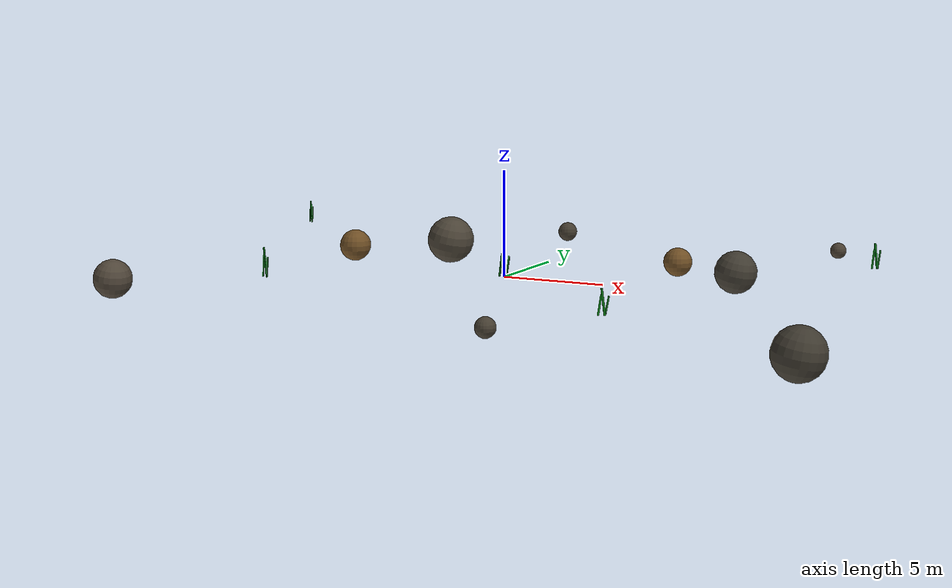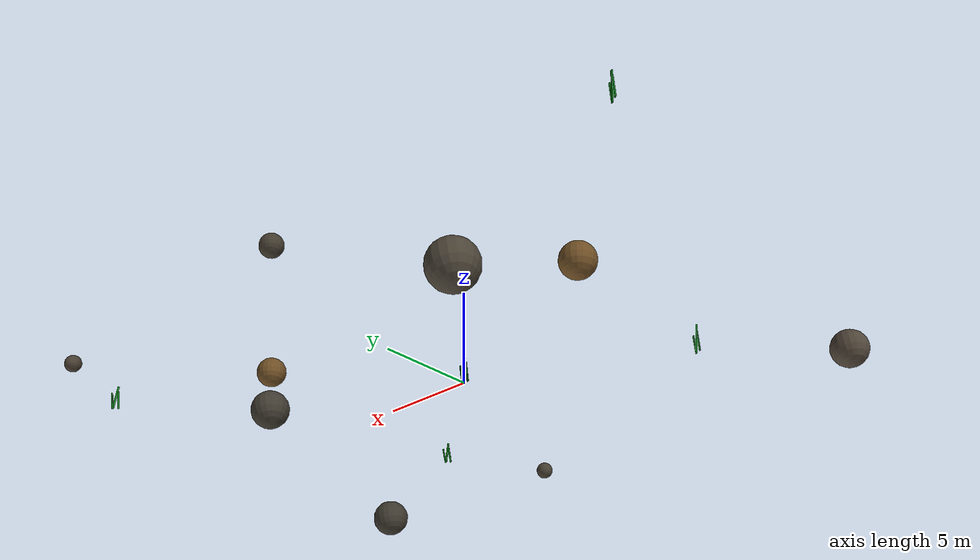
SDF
<?xml version="1.0"?>

<sdf version="1.7">

  <model name="underwater_decorations">

    <static>true</static>

    <!-- SEAWEED CLUSTER 1 -->

    <link name="seaweed_1">

      <visual name="blade_1">
        <pose>-0.18 0 0.55 0 0.12 0</pose>
        <geometry>
          <box>
            <size>0.08 0.05 1.1</size>
          </box>
        </geometry>
        <material>
          <ambient>0.02 0.22 0.05 1</ambient>
          <diffuse>0.03 0.42 0.08 1</diffuse>
        </material>
      </visual>

      <visual name="blade_2">
        <pose>0 0 0.65 0 -0.10 0.05</pose>
        <geometry>
          <box>
            <size>0.09 0.05 1.3</size>
          </box>
        </geometry>
        <material>
          <ambient>0.02 0.25 0.06 1</ambient>
          <diffuse>0.03 0.48 0.10 1</diffuse>
        </material>
      </visual>

      <visual name="blade_3">
        <pose>0.18 0 0.50 0 0.15 0</pose>
        <geometry>
          <box>
            <size>0.08 0.05 1.0</size>
          </box>
        </geometry>
        <material>
          <ambient>0.02 0.20 0.04 1</ambient>
          <diffuse>0.03 0.40 0.07 1</diffuse>
        </material>
      </visual>

    </link>

    <!-- SEAWEED CLUSTER 2 -->

    <link name="seaweed_2">

      <pose>8 -7 0 0 0 0.5</pose>

      <visual name="blade_1">
        <pose>-0.15 0 0.45 0 0.15 0</pose>
        <geometry>
          <box>
            <size>0.08 0.05 0.9</size>
          </box>
        </geometry>
        <material>
          <ambient>0.02 0.25 0.05 1</ambient>
          <diffuse>0.03 0.48 0.08 1</diffuse>
        </material>
      </visual>

      <visual name="blade_2">
        <pose>0 0 0.58 0 -0.12 0</pose>
        <geometry>
          <box>
            <size>0.09 0.05 1.16</size>
          </box>
        </geometry>
        <material>
          <ambient>0.02 0.22 0.04 1</ambient>
          <diffuse>0.03 0.45 0.07 1</diffuse>
        </material>
      </visual>

      <visual name="blade_3">
        <pose>0.16 0 0.42 0 0.18 0</pose>
        <geometry>
          <box>
            <size>0.07 0.05 0.84</size>
          </box>
        </geometry>
        <material>
          <ambient>0.02 0.20 0.04 1</ambient>
          <diffuse>0.03 0.40 0.07 1</diffuse>
        </material>
      </visual>

    </link>

    <!-- SEAWEED CLUSTER 3 -->

    <link name="seaweed_3">

      <pose>-10 -5 0 0 0 -0.4</pose>

      <visual name="blade_1">
        <pose>-0.15 0 0.55 0 0.10 0</pose>
        <geometry>
          <box>
            <size>0.07 0.05 1.1</size>
          </box>
        </geometry>
        <material>
          <ambient>0.02 0.20 0.05 1</ambient>
          <diffuse>0.03 0.40 0.08 1</diffuse>
        </material>
      </visual>

      <visual name="blade_2">
        <pose>0 0 0.70 0 -0.15 0</pose>
        <geometry>
          <box>
            <size>0.08 0.05 1.4</size>
          </box>
        </geometry>
        <material>
          <ambient>0.02 0.25 0.05 1</ambient>
          <diffuse>0.03 0.50 0.09 1</diffuse>
        </material>
      </visual>

      <visual name="blade_3">
        <pose>0.15 0 0.48 0 0.12 0</pose>
        <geometry>
          <box>
            <size>0.07 0.05 0.96</size>
          </box>
        </geometry>
        <material>
          <ambient>0.02 0.18 0.04 1</ambient>
          <diffuse>0.03 0.38 0.07 1</diffuse>
        </material>
      </visual>

    </link>

    <!-- SEAWEED CLUSTER 4 -->

    <link name="seaweed_4">

      <pose>15 10 0 0 0 0.8</pose>

      <visual name="blade_1">
        <pose>-0.16 0 0.48 0 0.12 0</pose>
        <geometry>
          <box>
            <size>0.08 0.05 0.96</size>
          </box>
        </geometry>
        <material>
          <ambient>0.02 0.22 0.05 1</ambient>
          <diffuse>0.03 0.44 0.08 1</diffuse>
        </material>
      </visual>

      <visual name="blade_2">
        <pose>0 0 0.62 0 -0.12 0</pose>
        <geometry>
          <box>
            <size>0.09 0.05 1.24</size>
          </box>
        </geometry>
        <material>
          <ambient>0.02 0.24 0.05 1</ambient>
          <diffuse>0.03 0.47 0.09 1</diffuse>
        </material>
      </visual>

      <visual name="blade_3">
        <pose>0.16 0 0.45 0 0.15 0</pose>
        <geometry>
          <box>
            <size>0.07 0.05 0.9</size>
          </box>
        </geometry>
        <material>
          <ambient>0.02 0.19 0.04 1</ambient>
          <diffuse>0.03 0.39 0.07 1</diffuse>
        </material>
      </visual>

    </link>

    <!-- SEAWEED CLUSTER 5 -->

    <link name="seaweed_5">

      <pose>-18 12 0 0 0 -0.6</pose>

      <visual name="blade_1">
        <pose>-0.15 0 0.50 0 0.15 0</pose>
        <geometry>
          <box>
            <size>0.08 0.05 1.0</size>
          </box>
        </geometry>
        <material>
          <ambient>0.02 0.22 0.05 1</ambient>
          <diffuse>0.03 0.43 0.08 1</diffuse>
        </material>
      </visual>

      <visual name="blade_2">
        <pose>0 0 0.60 0 -0.10 0</pose>
        <geometry>
          <box>
            <size>0.09 0.05 1.2</size>
          </box>
        </geometry>
        <material>
          <ambient>0.02 0.25 0.05 1</ambient>
          <diffuse>0.03 0.48 0.09 1</diffuse>
        </material>
      </visual>

      <visual name="blade_3">
        <pose>0.15 0 0.45 0 0.15 0</pose>
        <geometry>
          <box>
            <size>0.07 0.05 0.9</size>
          </box>
        </geometry>
        <material>
          <ambient>0.02 0.18 0.04 1</ambient>
          <diffuse>0.03 0.38 0.07 1</diffuse>
        </material>
      </visual>

    </link>

    <!-- ROCK 1 -->

    <link name="rock_1">

      <pose>-7 8 0.25 0.1 0.2 0.3</pose>

      <visual name="rock_visual">

        <geometry>
          <sphere>
            <radius>1.2</radius>
          </sphere>
        </geometry>

        <scale>1.4 0.9 0.6</scale>

        <material>
          <ambient>0.16 0.14 0.11 1</ambient>
          <diffuse>0.30 0.27 0.22 1</diffuse>
          <specular>0.03 0.03 0.03 1</specular>
        </material>

      </visual>

    </link>

    <!-- ROCK 2 -->

    <link name="rock_2">

      <pose>10 4 0.35 0.2 0.1 1.0</pose>

      <visual name="rock_visual">

        <geometry>
          <sphere>
            <radius>1.0</radius>
          </sphere>
        </geometry>

        <scale>1.3 0.8 0.7</scale>

        <material>
          <ambient>0.14 0.13 0.11 1</ambient>
          <diffuse>0.26 0.24 0.20 1</diffuse>
          <specular>0.03 0.03 0.03 1</specular>
        </material>

      </visual>

    </link>

    <!-- ROCK 3 -->

    <link name="rock_3">

      <pose>-15 -10 0.3 0.15 0.1 0.5</pose>

      <visual name="rock_visual">

        <geometry>
          <sphere>
            <radius>0.9</radius>
          </sphere>
        </geometry>

        <scale>1.5 1.0 0.65</scale>

        <material>
          <ambient>0.17 0.15 0.12 1</ambient>
          <diffuse>0.32 0.28 0.23 1</diffuse>
          <specular>0.03 0.03 0.03 1</specular>
        </material>

      </visual>

    </link>

    <!-- ROCK 4 -->

    <link name="rock_4">

      <pose>18 -12 0.25 0.1 0.15 0.7</pose>

      <visual name="rock_visual">

        <geometry>
          <sphere>
            <radius>1.1</radius>
          </sphere>
        </geometry>

        <scale>1.2 0.9 0.6</scale>

        <material>
          <ambient>0.13 0.12 0.10 1</ambient>
          <diffuse>0.25 0.23 0.19 1</diffuse>
          <specular>0.03 0.03 0.03 1</specular>
        </material>

      </visual>

    </link>

    <!-- SMALL ROCK 1 -->

    <link name="small_rock_1">

      <pose>5 -12 0.12 0 0 0</pose>

      <visual name="rock_visual">

        <geometry>
          <sphere>
            <radius>0.45</radius>
          </sphere>
        </geometry>

        <scale>1.4 1.0 0.7</scale>

        <material>
          <ambient>0.15 0.13 0.10 1</ambient>
          <diffuse>0.28 0.25 0.20 1</diffuse>
        </material>

      </visual>

    </link>

    <!-- SMALL ROCK 2 -->

    <link name="small_rock_2">

      <pose>-3 14 0.15 0 0 0.4</pose>

      <visual name="rock_visual">

        <geometry>
          <sphere>
            <radius>0.5</radius>
          </sphere>
        </geometry>

        <scale>1.3 0.9 0.7</scale>

        <material>
          <ambient>0.14 0.13 0.10 1</ambient>
          <diffuse>0.27 0.24 0.19 1</diffuse>
        </material>

      </visual>

    </link>

    <!-- SMALL ROCK 3 -->

    <link name="small_rock_3">

      <pose>12 14 0.12 0 0 0.8</pose>

      <visual name="rock_visual">

        <geometry>
          <sphere>
            <radius>0.4</radius>
          </sphere>
        </geometry>

        <scale>1.4 1.0 0.7</scale>

        <material>
          <ambient>0.15 0.13 0.10 1</ambient>
          <diffuse>0.29 0.25 0.20 1</diffuse>
        </material>

      </visual>

    </link>

    <!-- SMALL SAND MOUNDS -->

    <link name="sand_mound_1">

      <pose>6 7 0.12 0 0 0</pose>

      <visual name="mound">

        <geometry>
          <sphere>
            <radius>0.7</radius>
          </sphere>
        </geometry>

        <scale>2.0 1.4 0.3</scale>

        <material>
          <ambient>0.25 0.18 0.08 1</ambient>
          <diffuse>0.45 0.32 0.15 1</diffuse>
        </material>

      </visual>

    </link>

    <link name="sand_mound_2">

      <pose>-11 5 0.1 0 0 0</pose>

      <visual name="mound">

        <geometry>
          <sphere>
            <radius>0.8</radius>
          </sphere>
        </geometry>

        <scale>1.8 1.2 0.25</scale>

        <material>
          <ambient>0.25 0.18 0.08 1</ambient>
          <diffuse>0.45 0.32 0.15 1</diffuse>
        </material>

      </visual>

    </link>

  </model>

</sdf>
